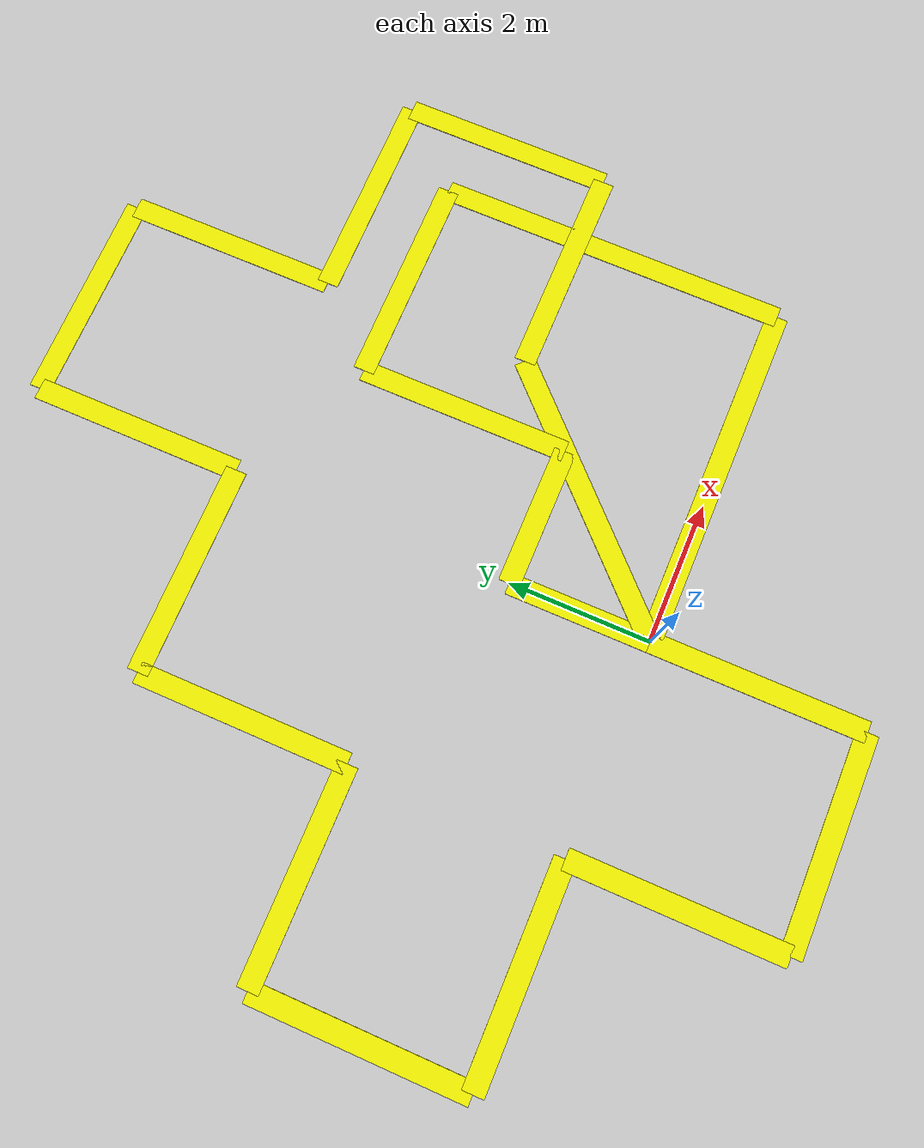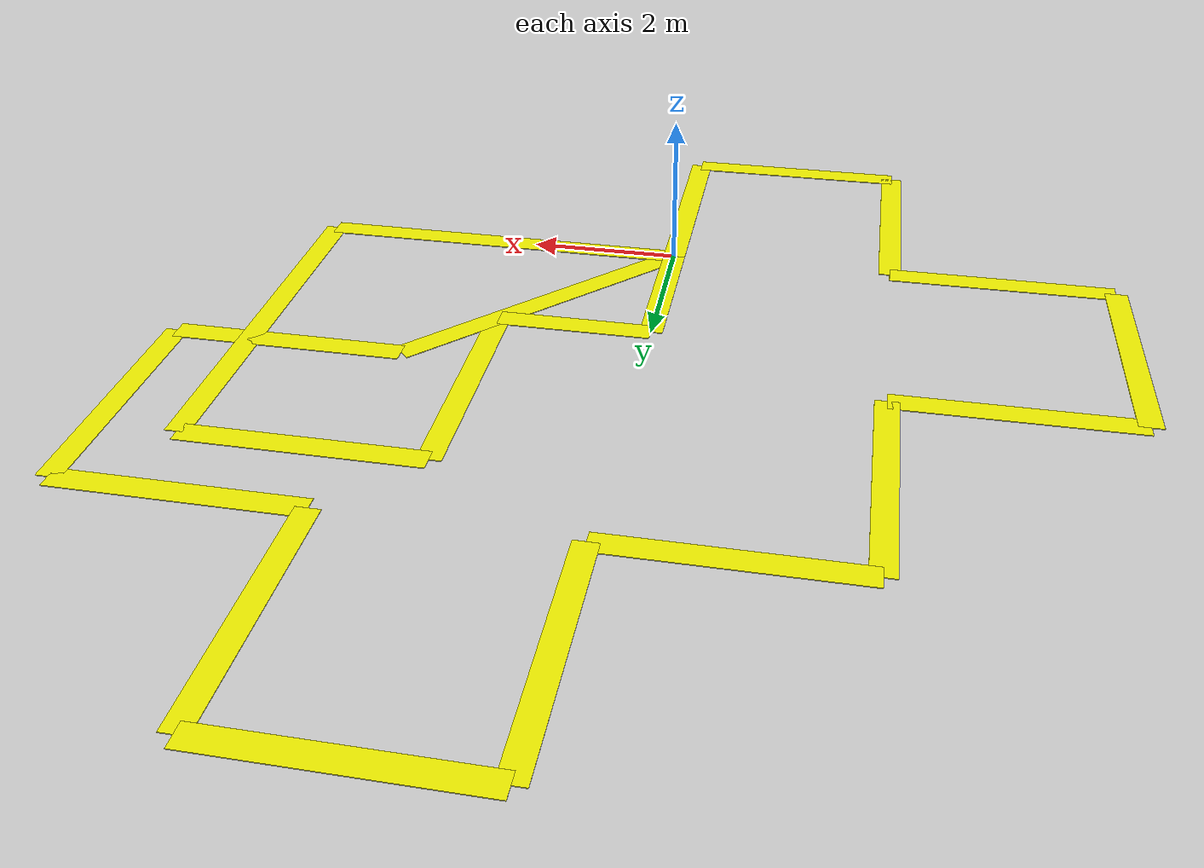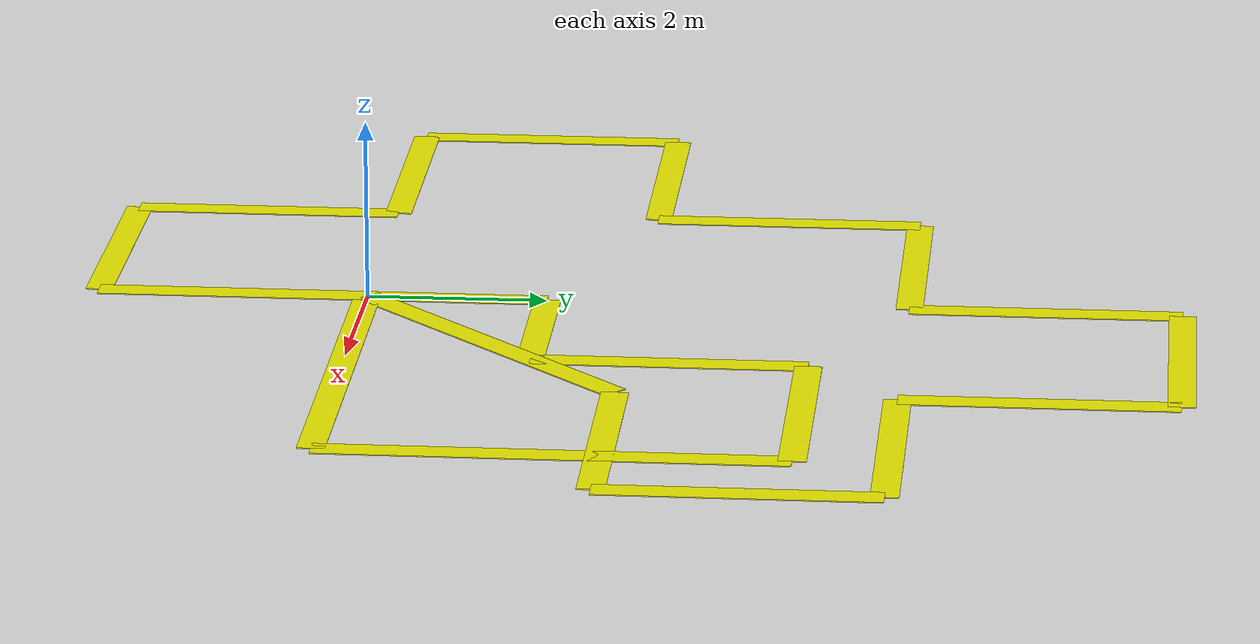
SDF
<?xml version="1.0" ?>
<sdf version="1.6">
  <model name="yellow_line_track">
    <static>true</static>
    <link name="track_link">
      <!-- Horizontal segment from (0,0) to (5,0) -->
      <visual name="segment1">
        <pose>2.5 0 0.005 0 0 0</pose>
        <geometry>
          <box>
            <size>5 0.3 0.01</size>
          </box>
        </geometry>
        <material>
          <ambient>1 1 0 1</ambient>
          <diffuse>1 1 0 1</diffuse>
        </material>
      </visual>

      <!-- Vertical segment from (5,0) to (5,5) -->
      <visual name="segment2">
        <pose>5 2.5 0.005 0 0 1.5708</pose>
        <geometry>
          <box>
            <size>5 0.3 0.01</size>
          </box>
        </geometry>
        <material>
          <ambient>1 1 0 1</ambient>
          <diffuse>1 1 0 1</diffuse>
        </material>
      </visual>

      <!-- Horizontal segment from (5,5) to (2,5) -->
      <visual name="segment3">
        <pose>3.5 5 0.005 0 0 0</pose>
        <geometry>
          <box>
            <size>3 0.3 0.01</size>
          </box>
        </geometry>
        <material>
          <ambient>1 1 0 1</ambient>
          <diffuse>1 1 0 1</diffuse>
        </material>
      </visual>

      <!-- Vertical segment from (2,5) to (2,2) -->
      <visual name="segment4">
        <pose>2 3.5 0.005 0 0 1.5708</pose>
        <geometry>
          <box>
            <size>3 0.3 0.01</size>
          </box>
        </geometry>
        <material>
          <ambient>1 1 0 1</ambient>
          <diffuse>1 1 0 1</diffuse>
        </material>
      </visual>

      <!-- Horizontal segment from (2,2) to (0,2) -->
      <visual name="segment5">
        <pose>1 2 0.005 0 0 0</pose>
        <geometry>
          <box>
            <size>2 0.3 0.01</size>
          </box>
        </geometry>
        <material>
          <ambient>1 1 0 1</ambient>
          <diffuse>1 1 0 1</diffuse>
        </material>
      </visual>

      <!-- Vertical segment from (0,2) to (0,0) -->
      <visual name="segment6">
        <pose>0 1 0.005 0 0 1.5708</pose>
        <geometry>
          <box>
            <size>2 0.3 0.01</size>
          </box>
        </geometry>
        <material>
          <ambient>1 1 0 1</ambient>
          <diffuse>1 1 0 1</diffuse>
        </material>
      </visual>

      <!-- Additional segments to make the track longer and more complex -->

      <!-- Diagonal segment from (0,0) to (3,3) -->
      <visual name="segment7">
        <pose>1.5 1.5 0.005 0 0 0.7854</pose>  <!-- 45-degree rotation -->
        <geometry>
          <box>
            <size>4.242 0.3 0.01</size>  <!-- Length calculated using Pythagorean theorem -->
          </box>
        </geometry>
        <material>
          <ambient>1 1 0 1</ambient>
          <diffuse>1 1 0 1</diffuse>
        </material>
      </visual>

      <!-- Horizontal segment from (3,3) to (6,3) -->
      <visual name="segment8">
        <pose>4.5 3 0.005 0 0 0</pose>
        <geometry>
          <box>
            <size>3 0.3 0.01</size>
          </box>
        </geometry>
        <material>
          <ambient>1 1 0 1</ambient>
          <diffuse>1 1 0 1</diffuse>
        </material>
      </visual>

      <!-- Vertical segment from (6,3) to (6,6) -->
      <visual name="segment9">
        <pose>6 4.5 0.005 0 0 1.5708</pose>
        <geometry>
          <box>
            <size>3 0.3 0.01</size>
          </box>
        </geometry>
        <material>
          <ambient>1 1 0 1</ambient>
          <diffuse>1 1 0 1</diffuse>
        </material>
      </visual>

      <!-- Horizontal segment from (6,6) to (3,6) -->
      <visual name="segment10">
        <pose>4.5 6 0.005 0 0 0</pose>
        <geometry>
          <box>
            <size>3 0.3 0.01</size>
          </box>
        </geometry>
        <material>
          <ambient>1 1 0 1</ambient>
          <diffuse>1 1 0 1</diffuse>
        </material>
      </visual>

      <!-- Vertical segment from (3,6) to (3,9) -->
      <visual name="segment11">
        <pose>3 7.5 0.005 0 0 1.5708</pose>
        <geometry>
          <box>
            <size>3 0.3 0.01</size>
          </box>
        </geometry>
        <material>
          <ambient>1 1 0 1</ambient>
          <diffuse>1 1 0 1</diffuse>
        </material>
      </visual>

      <!-- Horizontal segment from (3,9) to (0,9) -->
      <visual name="segment12">
        <pose>1.5 9 0.005 0 0 0</pose>
        <geometry>
          <box>
            <size>3 0.3 0.01</size>
          </box>
        </geometry>
        <material>
          <ambient>1 1 0 1</ambient>
          <diffuse>1 1 0 1</diffuse>
        </material>
      </visual>

      <!-- Vertical segment from (0,9) to (0,6) -->
      <visual name="segment13">
        <pose>0 7.5 0.005 0 0 1.5708</pose>
        <geometry>
          <box>
            <size>3 0.3 0.01</size>
          </box>
        </geometry>
        <material>
          <ambient>1 1 0 1</ambient>
          <diffuse>1 1 0 1</diffuse>
        </material>
      </visual>

      <!-- Horizontal segment from (0,6) to (-3,6) -->
      <visual name="segment14">
        <pose>-1.5 6 0.005 0 0 0</pose>
        <geometry>
          <box>
            <size>3 0.3 0.01</size>
          </box>
        </geometry>
        <material>
          <ambient>1 1 0 1</ambient>
          <diffuse>1 1 0 1</diffuse>
        </material>
      </visual>

      <!-- Vertical segment from (-3,6) to (-3,3) -->
      <visual name="segment15">
        <pose>-3 4.5 0.005 0 0 1.5708</pose>
        <geometry>
          <box>
            <size>3 0.3 0.01</size>
          </box>
        </geometry>
        <material>
          <ambient>1 1 0 1</ambient>
          <diffuse>1 1 0 1</diffuse>
        </material>
      </visual>

      <!-- Horizontal segment from (-3,3) to (-6,3) -->
      <visual name="segment16">
        <pose>-4.5 3 0.005 0 0 0</pose>
        <geometry>
          <box>
            <size>3 0.3 0.01</size>
          </box>
        </geometry>
        <material>
          <ambient>1 1 0 1</ambient>
          <diffuse>1 1 0 1</diffuse>
        </material>
      </visual>

      <!-- Vertical segment from (-6,3) to (-6,0) -->
      <visual name="segment17">
        <pose>-6 1.5 0.005 0 0 1.5708</pose>
        <geometry>
          <box>
            <size>3 0.3 0.01</size>
          </box>
        </geometry>
        <material>
          <ambient>1 1 0 1</ambient>
          <diffuse>1 1 0 1</diffuse>
        </material>
      </visual>

      <!-- Horizontal segment from (-6,0) to (-3,0) -->
      <visual name="segment18">
        <pose>-4.5 0 0.005 0 0 0</pose>
        <geometry>
          <box>
            <size>3 0.3 0.01</size>
          </box>
        </geometry>
        <material>
          <ambient>1 1 0 1</ambient>
          <diffuse>1 1 0 1</diffuse>
        </material>
      </visual>

      <!-- Vertical segment from (-3,0) to (-3,-3) -->
      <visual name="segment19">
        <pose>-3 -1.5 0.005 0 0 1.5708</pose>
        <geometry>
          <box>
            <size>3 0.3 0.01</size>
          </box>
        </geometry>
        <material>
          <ambient>1 1 0 1</ambient>
          <diffuse>1 1 0 1</diffuse>
        </material>
      </visual>

      <!-- Horizontal segment from (-3,-3) to (0,-3) -->
      <visual name="segment20">
        <pose>-1.5 -3 0.005 0 0 0</pose>
        <geometry>
          <box>
            <size>3 0.3 0.01</size>
          </box>
        </geometry>
        <material>
          <ambient>1 1 0 1</ambient>
          <diffuse>1 1 0 1</diffuse>
        </material>
      </visual>

      <!-- Vertical segment from (0,-3) to (0,0) -->
      <visual name="segment21">
        <pose>0 -1.5 0.005 0 0 1.5708</pose>
        <geometry>
          <box>
            <size>3 0.3 0.01</size>
          </box>
        </geometry>
        <material>
          <ambient>1 1 0 1</ambient>
          <diffuse>1 1 0 1</diffuse>
        </material>
      </visual>
    </link>
  </model>
</sdf>
